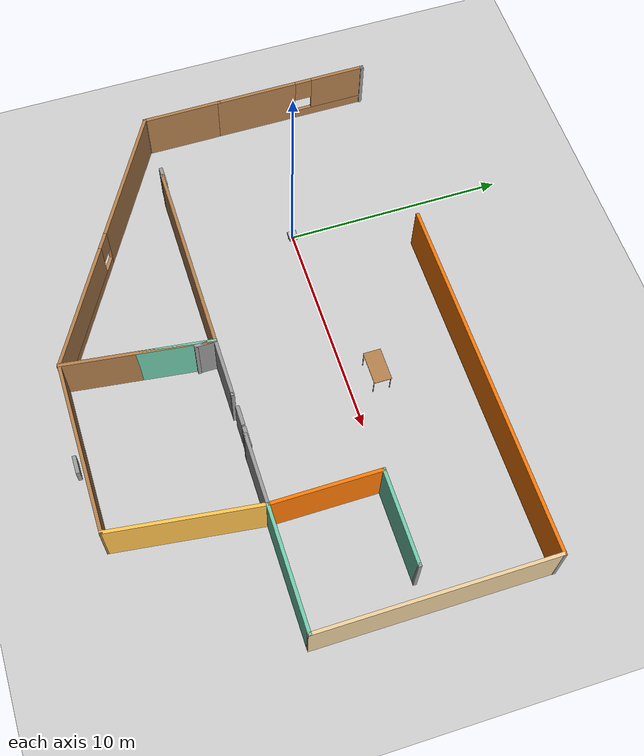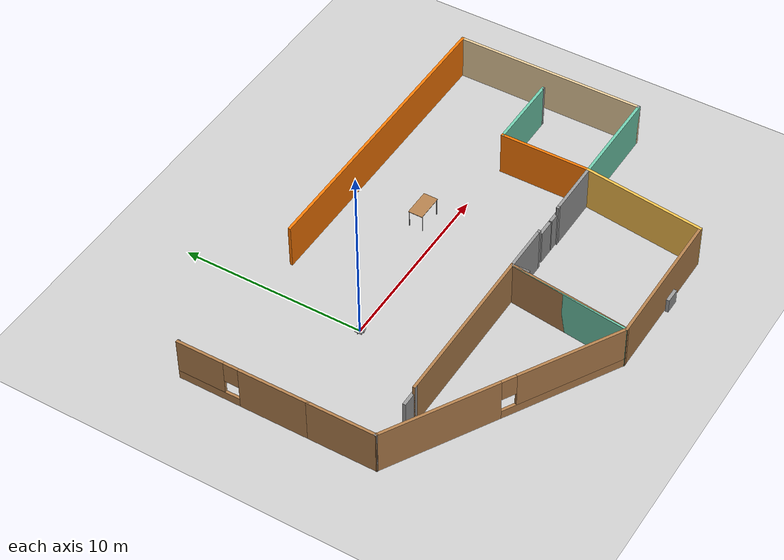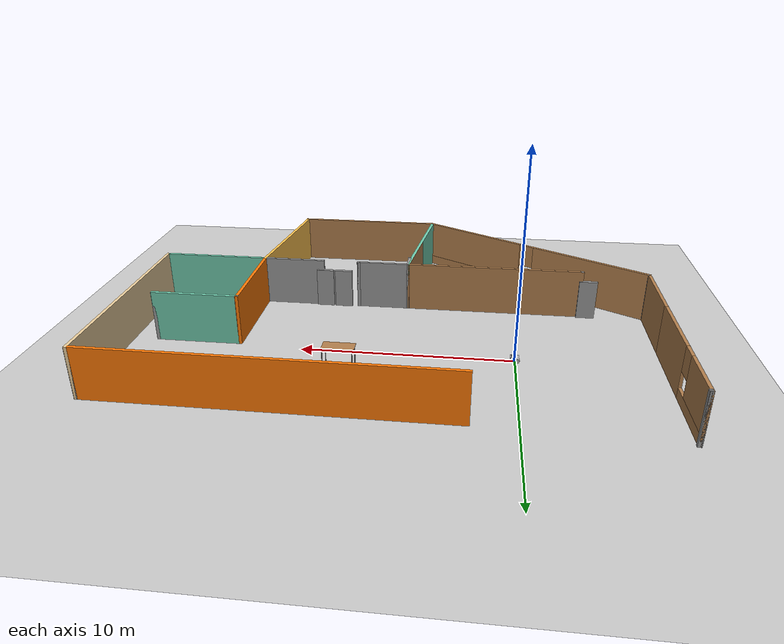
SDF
<sdf version="1.7">
 <world name="default">
  <light name="sun" type="directional">
   <pose>0 0 10 0 -0 0</pose>
   <diffuse>0.8 0.8 0.8 1</diffuse>
   <specular>0.2 0.2 0.2 1</specular>
   <attenuation>
    <range>1000</range>
    <constant>0.9</constant>
    <linear>0.01</linear>
    <quadratic>0.001</quadratic>
   </attenuation>
   <direction>-0.5 0.1 -0.9</direction>
   <spot><inner_angle>0</inner_angle><outer_angle>0</outer_angle><falloff>0</falloff></spot>
  </light>
  <model name="ground_plane">
   <static>1</static>
   <link name="link">
    <collision name="collision">
     <geometry><plane><normal>0 0 1</normal><size>100 100</size></plane></geometry>
     <surface>
      <contact><collide_bitmask>65535</collide_bitmask></contact>
      <friction><ode><mu>100</mu><mu2>50</mu2></ode></friction>
     </surface>
    </collision>
    <visual name="visual">
     <cast_shadows>0</cast_shadows>
     <geometry><plane><normal>0 0 1</normal><size>100 100</size></plane></geometry>
     <material>
      <script><uri>file://media/materials/scripts/gazebo.material</uri><name>Gazebo/Grey</name></script>
     </material>
    </visual>
   </link>
  </model>
  <gravity>0 0 -9.8</gravity>
  <magnetic_field>6e-06 2.3e-05 -4.2e-05</magnetic_field>
  <atmosphere type="adiabatic"/>
  <physics type="ode">
   <max_step_size>0.001</max_step_size>
   <real_time_factor>1</real_time_factor>
   <real_time_update_rate>1000</real_time_update_rate>
  </physics>
  <scene><ambient>0.4 0.4 0.4 1</ambient><background>0.7 0.7 0.7 1</background><shadows>1</shadows></scene>
  <spherical_coordinates>
   <surface_model>EARTH_WGS84</surface_model>
   <latitude_deg>0</latitude_deg>
   <longitude_deg>0</longitude_deg>
   <elevation>0</elevation>
   <heading_deg>0</heading_deg>
  </spherical_coordinates>
  <model name="differential_drive_robot">
   <link name="base_link">
    <inertial>
     <pose>1e-06 0 0.1 0 -0 0</pose>
     <mass>1.00001</mass>
     <inertia>
      <ixx>0.100001</ixx>
      <ixy>0</ixy>
      <ixz>-4.99995e-08</ixz>
      <iyy>0.100001</iyy>
      <iyz>0</iyz>
      <izz>0.100001</izz>
     </inertia>
    </inertial>
    <collision name="base_link_collision"><geometry><box><size>0.4 0.4 0.2</size></box></geometry></collision>
    <collision name="base_link_fixed_joint_lump__laser_collision_1">
     <pose>0.1 0 0.15 0 -0 0</pose>
     <geometry><box><size>0.1 0.1 0.1</size></box></geometry>
    </collision>
    <visual name="base_link_visual"><geometry><box><size>0.4 0.4 0.2</size></box></geometry></visual>
    <visual name="base_link_fixed_joint_lump__laser_visual_1">
     <pose>0.1 0 0.15 0 -0 0</pose>
     <geometry><box><size>0.1 0.1 0.1</size></box></geometry>
    </visual>
    <sensor name="laser_sensor" type="ray">
     <visualize>1</visualize>
     <update_rate>40</update_rate>
     <ray>
      <scan>
       <horizontal>
        <samples>640</samples>
        <resolution>1</resolution>
        <min_angle>-1.5708</min_angle>
        <max_angle>1.5708</max_angle>
       </horizontal>
       <vertical><samples>1</samples><min_angle>0</min_angle><max_angle>0</max_angle></vertical>
      </scan>
      <range><min>0.1</min><max>10</max><resolution>0.01</resolution></range>
     </ray>
     <plugin name="gazebo_ros_laser" filename="libgazebo_ros_laser.so">
      <topicName>scan</topicName>
      <frameName>laser</frameName>
      <robotNamespace>/</robotNamespace>
     </plugin>
     <pose>0.1 0 0.15 0 -0 0</pose>
    </sensor>
   </link>
   <joint name="back_wheel_joint" type="revolute">
    <pose relative_to="base_link">-0.2 0 -0.1 0 -0 0</pose>
    <parent>base_link</parent>
    <child>back_wheel</child>
    <axis>
     <xyz>0 1 0</xyz>
     <limit><lower>-1e+16</lower><upper>1e+16</upper></limit>
     <dynamics><spring_reference>0</spring_reference><spring_stiffness>0</spring_stiffness></dynamics>
    </axis>
   </joint>
   <link name="back_wheel">
    <pose relative_to="back_wheel_joint">0 0 0 0 -0 0</pose>
    <inertial>
     <mass>0.5</mass>
     <inertia><ixx>0.1</ixx><ixy>0</ixy><ixz>0</ixz><iyy>0.1</iyy><iyz>0</iyz><izz>0.1</izz></inertia>
    </inertial>
    <collision name="back_wheel_collision">
     <pose>0 0 0 1.5708 -0 0</pose>
     <geometry><cylinder><length>0.02</length><radius>0.05</radius></cylinder></geometry>
    </collision>
    <visual name="back_wheel_visual">
     <pose>0 0 0 1.5708 -0 0</pose>
     <geometry><cylinder><length>0.02</length><radius>0.05</radius></cylinder></geometry>
    </visual>
   </link>
   <joint name="front_wheel_joint" type="revolute">
    <pose relative_to="base_link">0.2 0 -0.1 0 -0 0</pose>
    <parent>base_link</parent>
    <child>front_wheel</child>
    <axis>
     <xyz>0 1 0</xyz>
     <limit><lower>-1e+16</lower><upper>1e+16</upper></limit>
     <dynamics><spring_reference>0</spring_reference><spring_stiffness>0</spring_stiffness></dynamics>
    </axis>
   </joint>
   <link name="front_wheel">
    <pose relative_to="front_wheel_joint">0 0 0 0 -0 0</pose>
    <inertial>
     <mass>0.5</mass>
     <inertia><ixx>0.1</ixx><ixy>0</ixy><ixz>0</ixz><iyy>0.1</iyy><iyz>0</iyz><izz>0.1</izz></inertia>
    </inertial>
    <collision name="front_wheel_collision">
     <pose>0 0 0 1.5708 -0 0</pose>
     <geometry><cylinder><length>0.02</length><radius>0.05</radius></cylinder></geometry>
    </collision>
    <visual name="front_wheel_visual">
     <pose>0 0 0 1.5708 -0 0</pose>
     <geometry><cylinder><length>0.02</length><radius>0.05</radius></cylinder></geometry>
    </visual>
   </link>
   <joint name="left_wheel_joint" type="revolute">
    <pose relative_to="base_link">0 0.2 -0.1 0 -0 0</pose>
    <parent>base_link</parent>
    <child>left_wheel</child>
    <axis>
     <xyz>0 1 0</xyz>
     <limit><lower>-1e+16</lower><upper>1e+16</upper></limit>
     <dynamics><spring_reference>0</spring_reference><spring_stiffness>0</spring_stiffness></dynamics>
    </axis>
   </joint>
   <link name="left_wheel">
    <pose relative_to="left_wheel_joint">0 0 0 0 -0 0</pose>
    <inertial>
     <mass>0.5</mass>
     <inertia><ixx>0.1</ixx><ixy>0</ixy><ixz>0</ixz><iyy>0.1</iyy><iyz>0</iyz><izz>0.1</izz></inertia>
    </inertial>
    <collision name="left_wheel_collision">
     <pose>0 0 0 1.5708 -0 0</pose>
     <geometry><cylinder><length>0.02</length><radius>0.05</radius></cylinder></geometry>
    </collision>
    <visual name="left_wheel_visual">
     <pose>0 0 0 1.5708 -0 0</pose>
     <geometry><cylinder><length>0.02</length><radius>0.05</radius></cylinder></geometry>
    </visual>
   </link>
   <joint name="right_wheel_joint" type="revolute">
    <pose relative_to="base_link">0 -0.2 -0.1 0 -0 0</pose>
    <parent>base_link</parent>
    <child>right_wheel</child>
    <axis>
     <xyz>0 1 0</xyz>
     <limit><lower>-1e+16</lower><upper>1e+16</upper></limit>
     <dynamics><spring_reference>0</spring_reference><spring_stiffness>0</spring_stiffness></dynamics>
    </axis>
   </joint>
   <link name="right_wheel">
    <pose relative_to="right_wheel_joint">0 0 0 0 -0 0</pose>
    <inertial>
     <mass>0.5</mass>
     <inertia><ixx>0.1</ixx><ixy>0</ixy><ixz>0</ixz><iyy>0.1</iyy><iyz>0</iyz><izz>0.1</izz></inertia>
    </inertial>
    <collision name="right_wheel_collision">
     <pose>0 0 0 1.5708 -0 0</pose>
     <geometry><cylinder><length>0.02</length><radius>0.05</radius></cylinder></geometry>
    </collision>
    <visual name="right_wheel_visual">
     <pose>0 0 0 1.5708 -0 0</pose>
     <geometry><cylinder><length>0.02</length><radius>0.05</radius></cylinder></geometry>
    </visual>
   </link>
   <static>0</static>
   <plugin name="robot_state_publisher" filename="libgazebo_ros_robot_state.so">
    <robotNamespace>/</robotNamespace>
   </plugin>
   <plugin name="joint_state_publisher" filename="libgazebo_ros_joint_state_publisher.so">
    <joint_state_topic>joint_states</joint_state_topic>
    <robotNamespace>/</robotNamespace>
   </plugin>
   <plugin name="differential_drive_controller" filename="libgazebo_ros_diff_drive.so">
    <robotNamespace>/</robotNamespace>
    <leftJoint>left_wheel_joint</leftJoint>
    <rightJoint>right_wheel_joint</rightJoint>
    <wheelSeparation>0.4</wheelSeparation>
    <wheelRadius>0.05</wheelRadius>
    <publishWheelTF>1</publishWheelTF>
    <publishWheelJointState>1</publishWheelJointState>
    <publishTf>1</publishTf>
    <updateRate>50</updateRate>
    <commandTopic>cmd_vel</commandTopic>
    <odometryTopic>odom</odometryTopic>
    <odometryFrame>odom</odometryFrame>
    <robotBaseFrame>base_link</robotBaseFrame>
    <odometrySource>1</odometrySource>
    <wheelDiameter>0.1</wheelDiameter>
    <wheelAcceleration>0</wheelAcceleration>
    <wheelTorque>5</wheelTorque>
   </plugin>
   <pose>0.000556 0.00024 0.15 -1e-06 0 -0.001583</pose>
  </model>
  <model name="save">
   <pose>5.82624 -3.06558 0 0 -0 0</pose>
   <link name="Door_0">
    <collision name="Door_0_Collision">
     <geometry><box><size>0.9 0.17 2</size></box></geometry>
     <pose>0 0 1 0 -0 0</pose>
    </collision>
    <visual name="Door_0_Visual">
     <pose>0 0 1 0 -0 0</pose>
     <geometry><box><size>0.9 0.17 2</size></box></geometry>
     <material>
      <script><uri>file://media/materials/scripts/gazebo.material</uri><name>Gazebo/Grey</name></script>
     </material>
    </visual>
    <pose>2.98824 -1.98577 0 0 -0 0</pose>
   </link>
   <link name="Door_1">
    <collision name="Door_1_Collision">
     <geometry><box><size>0.9 0.17 2</size></box></geometry>
     <pose>0 0 1 0 -0 0</pose>
    </collision>
    <visual name="Door_1_Visual">
     <pose>0 0 1 0 -0 0</pose>
     <geometry><box><size>0.9 0.17 2</size></box></geometry>
     <material>
      <script><uri>file://media/materials/scripts/gazebo.material</uri><name>Gazebo/Grey</name></script>
     </material>
    </visual>
    <pose>3.95676 -1.98577 0 0 -0 0</pose>
   </link>
   <link name="Door_2">
    <collision name="Door_2_Collision">
     <geometry><box><size>0.91 0.17 2.003</size></box></geometry>
     <pose>0 0 1.0015 0 -0 0</pose>
    </collision>
    <visual name="Door_2_Visual">
     <pose>0 0 1.0015 0 -0 0</pose>
     <geometry><box><size>0.91 0.17 2.003</size></box></geometry>
     <material>
      <script><uri>file://media/materials/scripts/gazebo.material</uri><name>Gazebo/Grey</name></script>
     </material>
    </visual>
    <pose>-9.60243 -1.98577 0 0 -0 0</pose>
   </link>
   <link name="Wall_0">
    <collision name="Wall_0_Collision">
     <geometry><box><size>3.75 0.15 2.5</size></box></geometry>
     <pose>0 0 1.25 0 -0 0</pose>
    </collision>
    <visual name="Wall_0_Visual">
     <pose>0 0 1.25 0 -0 0</pose>
     <geometry><box><size>3.75 0.15 2.5</size></box></geometry>
     <material>
      <script><uri>file://media/materials/scripts/gazebo.material</uri><name>Gazebo/Wood</name></script>
      <ambient>1 1 1 1</ambient>
     </material>
     <meta><layer>0</layer></meta>
    </visual>
    <pose>-12.5362 -0.264419 0 0 -0 -1.5708</pose>
   </link>
   <link name="Wall_1">
    <collision name="Wall_1_Collision">
     <geometry><box><size>0.16 0.15 2.5</size></box></geometry>
     <pose>0 0 1.25 0 -0 0</pose>
    </collision>
    <visual name="Wall_1_Visual">
     <pose>0 0 1.25 0 -0 0</pose>
     <geometry><box><size>0.16 0.15 2.5</size></box></geometry>
     <material>
      <script><uri>file://media/materials/scripts/gazebo.material</uri><name>Gazebo/Grey</name></script>
      <ambient>1 1 1 1</ambient>
     </material>
     <meta><layer>0</layer></meta>
    </visual>
    <pose>-12.5312 -2.06442 0 0 -0 0</pose>
   </link>
   <link name="Wall_10">
    <collision name="Wall_10_Collision">
     <geometry><box><size>0.16 0.15 2.5</size></box></geometry>
     <pose>0 0 1.25 0 -0 0</pose>
    </collision>
    <visual name="Wall_10_Visual">
     <pose>0 0 1.25 0 -0 0</pose>
     <geometry><box><size>0.16 0.15 2.5</size></box></geometry>
     <material>
      <script><uri>file://media/materials/scripts/gazebo.material</uri><name>Gazebo/Grey</name></script>
      <ambient>1 1 1 1</ambient>
     </material>
     <meta><layer>0</layer></meta>
    </visual>
    <pose>-12.5112 8.63558 0 0 -0 0</pose>
   </link>
   <link name="Wall_11">
    <collision name="Wall_11_Collision">
     <geometry><box><size>0.16 0.15 2.5</size></box></geometry>
     <pose>0 0 1.25 0 -0 0</pose>
    </collision>
    <visual name="Wall_11_Visual">
     <pose>0 0 1.25 0 -0 0</pose>
     <geometry><box><size>0.16 0.15 2.5</size></box></geometry>
     <material>
      <script><uri>file://media/materials/scripts/gazebo.material</uri><name>Gazebo/Grey</name></script>
      <ambient>1 1 1 1</ambient>
     </material>
     <meta><layer>0</layer></meta>
    </visual>
    <pose>-12.5012 8.63558 0 0 -0 0</pose>
   </link>
   <link name="Wall_13">
    <collision name="Wall_13_Collision">
     <geometry><box><size>7.75 0.15 2.5</size></box></geometry>
     <pose>0 0 1.25 0 -0 0</pose>
    </collision>
    <visual name="Wall_13_Visual">
     <pose>0 0 1.25 0 -0 0</pose>
     <geometry><box><size>7.75 0.15 2.5</size></box></geometry>
     <material>
      <script><uri>file://media/materials/scripts/gazebo.material</uri><name>Gazebo/Wood</name></script>
      <ambient>1 1 1 1</ambient>
     </material>
     <meta><layer>0</layer></meta>
    </visual>
    <pose>2.54915 -8.60807 0 0 -0 0</pose>
   </link>
   <link name="Wall_14">
    <collision name="Wall_14_Collision">
     <geometry><box><size>6.74666 0.15 2.5</size></box></geometry>
     <pose>0 0 1.25 0 -0 0</pose>
    </collision>
    <visual name="Wall_14_Visual">
     <pose>0 0 1.25 0 -0 0</pose>
     <geometry><box><size>6.74666 0.15 2.5</size></box></geometry>
     <material>
      <script><uri>file://media/materials/scripts/gazebo.material</uri><name>Gazebo/Grey</name></script>
      <ambient>1 0.764706 0.305882 1</ambient>
     </material>
     <meta><layer>0</layer></meta>
    </visual>
    <pose>6.76645 -5.33624 0 0 -0 1.44394</pose>
   </link>
   <link name="Wall_16">
    <collision name="Wall_16_Collision">
     <geometry><box><size>1 0.15 2.5</size></box></geometry>
     <pose>0 0 1.25 0 -0 0</pose>
    </collision>
    <visual name="Wall_16_Visual">
     <pose>0 0 1.25 0 -0 0</pose>
     <geometry><box><size>1 0.15 2.5</size></box></geometry>
     <material>
      <script><uri>file://media/materials/scripts/gazebo.material</uri><name>Gazebo/Grey</name></script>
      <ambient>1 1 1 1</ambient>
     </material>
     <meta><layer>0</layer></meta>
    </visual>
    <pose>-0.416243 -2.48942 0 0 -0 -1.5708</pose>
   </link>
   <link name="Wall_17">
    <collision name="Wall_17_Collision">
     <geometry><box><size>0.16 0.15 2.5</size></box></geometry>
     <pose>0 0 1.25 0 -0 0</pose>
    </collision>
    <visual name="Wall_17_Visual">
     <pose>0 0 1.25 0 -0 0</pose>
     <geometry><box><size>0.16 0.15 2.5</size></box></geometry>
     <material>
      <script><uri>file://media/materials/scripts/gazebo.material</uri><name>Gazebo/Grey</name></script>
      <ambient>1 1 1 1</ambient>
     </material>
     <meta><layer>0</layer></meta>
    </visual>
    <pose>-0.411243 -2.91442 0 0 -0 0</pose>
   </link>
   <link name="Wall_18">
    <collision name="Wall_18_Collision">
     <geometry><box><size>0.16 0.15 2.5</size></box></geometry>
     <pose>0 0 1.25 0 -0 0</pose>
    </collision>
    <visual name="Wall_18_Visual">
     <pose>0 0 1.25 0 -0 0</pose>
     <geometry><box><size>0.16 0.15 2.5</size></box></geometry>
     <material>
      <script><uri>file://media/materials/scripts/gazebo.material</uri><name>Gazebo/Grey</name></script>
      <ambient>1 1 1 1</ambient>
     </material>
     <meta><layer>0</layer></meta>
    </visual>
    <pose>-0.401243 -2.91442 0 0 -0 0</pose>
   </link>
   <link name="Wall_2">
    <pose>-6.88855 -5.33624 0 0 -0 -0.525844</pose>
    <visual name="Wall_2_Visual_0">
     <pose>-3.37088 0 1.25 0 -0 0</pose>
     <geometry><box><size>6.44488 0.15 2.5</size></box></geometry>
     <material>
      <script><uri>file://media/materials/scripts/gazebo.material</uri><name>Gazebo/Wood</name></script>
      <ambient>1 1 1 1</ambient>
     </material>
     <meta><layer>0</layer></meta>
    </visual>
    <collision name="Wall_2_Collision_0">
     <geometry><box><size>6.44488 0.15 2.5</size></box></geometry>
     <pose>-3.37088 0 1.25 0 -0 0</pose>
    </collision>
    <visual name="Wall_2_Visual_1">
     <pose>3.22244 0 0.25 0 -0 0</pose>
     <geometry><box><size>6.74175 0.15 0.5</size></box></geometry>
     <material>
      <script><uri>file://media/materials/scripts/gazebo.material</uri><name>Gazebo/Wood</name></script>
      <ambient>1 1 1 1</ambient>
     </material>
     <meta><layer>0</layer></meta>
    </visual>
    <collision name="Wall_2_Collision_1">
     <geometry><box><size>6.74175 0.15 0.5</size></box></geometry>
     <pose>3.22244 0 0.25 0 -0 0</pose>
    </collision>
    <visual name="Wall_2_Visual_2">
     <pose>3.62244 0 1.5 0 -0 0</pose>
     <geometry><box><size>5.94175 0.15 2</size></box></geometry>
     <material>
      <script><uri>file://media/materials/scripts/gazebo.material</uri><name>Gazebo/Wood</name></script>
      <ambient>1 1 1 1</ambient>
     </material>
     <meta><layer>0</layer></meta>
    </visual>
    <collision name="Wall_2_Collision_2">
     <geometry><box><size>5.94175 0.15 2</size></box></geometry>
     <pose>3.62244 0 1.5 0 -0 0</pose>
    </collision>
    <visual name="Wall_2_Visual_3">
     <pose>0.251565 0 1.9 0 -0 0</pose>
     <geometry><box><size>0.8 0.15 1.2</size></box></geometry>
     <material>
      <script><uri>file://media/materials/scripts/gazebo.material</uri><name>Gazebo/Wood</name></script>
      <ambient>1 1 1 1</ambient>
     </material>
     <meta><layer>0</layer></meta>
    </visual>
    <collision name="Wall_2_Collision_3">
     <geometry><box><size>0.8 0.15 1.2</size></box></geometry>
     <pose>0.251565 0 1.9 0 -0 0</pose>
    </collision>
   </link>
   <link name="Wall_20">
    <collision name="Wall_20_Collision">
     <geometry><box><size>5.5 0.15 2.5</size></box></geometry>
     <pose>0 0 1.25 0 -0 0</pose>
    </collision>
    <visual name="Wall_20_Visual">
     <pose>0 0 1.25 0 -0 0</pose>
     <geometry><box><size>5.5 0.15 2.5</size></box></geometry>
     <material>
      <script><uri>file://media/materials/scripts/gazebo.material</uri><name>Gazebo/Grey</name></script>
      <ambient>0.435294 0.796078 0.67451 1</ambient>
     </material>
     <meta><layer>0</layer></meta>
    </visual>
    <pose>9.85876 -2.06442 0 0 -0 0</pose>
   </link>
   <link name="Wall_21">
    <collision name="Wall_21_Collision">
     <geometry><box><size>0.16 0.15 2.5</size></box></geometry>
     <pose>0 0 1.25 0 -0 0</pose>
    </collision>
    <visual name="Wall_21_Visual">
     <pose>0 0 1.25 0 -0 0</pose>
     <geometry><box><size>0.16 0.15 2.5</size></box></geometry>
     <material>
      <script><uri>file://media/materials/scripts/gazebo.material</uri><name>Gazebo/Grey</name></script>
      <ambient>1 1 1 1</ambient>
     </material>
     <meta><layer>0</layer></meta>
    </visual>
    <pose>12.5388 -2.06442 0 0 -0 0</pose>
   </link>
   <link name="Wall_22">
    <collision name="Wall_22_Collision">
     <geometry><box><size>10.5 0.15 2.5</size></box></geometry>
     <pose>0 0 1.25 0 -0 0</pose>
    </collision>
    <visual name="Wall_22_Visual">
     <pose>0 0 1.25 0 -0 0</pose>
     <geometry><box><size>10.5 0.15 2.5</size></box></geometry>
     <material>
      <script><uri>file://media/materials/scripts/gazebo.material</uri><name>Gazebo/Grey</name></script>
      <ambient>0.921569 0.807843 0.615686 1</ambient>
     </material>
     <meta><layer>0</layer></meta>
    </visual>
    <pose>12.5438 3.11058 0 0 -0 1.5708</pose>
   </link>
   <link name="Wall_23">
    <collision name="Wall_23_Collision">
     <geometry><box><size>0.16 0.15 2.5</size></box></geometry>
     <pose>0 0 1.25 0 -0 0</pose>
    </collision>
    <visual name="Wall_23_Visual">
     <pose>0 0 1.25 0 -0 0</pose>
     <geometry><box><size>0.16 0.15 2.5</size></box></geometry>
     <material>
      <script><uri>file://media/materials/scripts/gazebo.material</uri><name>Gazebo/Grey</name></script>
      <ambient>1 1 1 1</ambient>
     </material>
     <meta><layer>0</layer></meta>
    </visual>
    <pose>12.5488 8.28558 0 0 -0 0</pose>
   </link>
   <link name="Wall_24">
    <collision name="Wall_24_Collision">
     <geometry><box><size>16.5 0.15 2.5</size></box></geometry>
     <pose>0 0 1.25 0 -0 0</pose>
    </collision>
    <visual name="Wall_24_Visual">
     <pose>0 0 1.25 0 -0 0</pose>
     <geometry><box><size>16.5 0.15 2.5</size></box></geometry>
     <material>
      <script><uri>file://media/materials/scripts/gazebo.material</uri><name>Gazebo/Grey</name></script>
      <ambient>0.996078 0.47451 0.0196078 1</ambient>
     </material>
     <meta><layer>0</layer></meta>
    </visual>
    <pose>4.37876 8.28558 0 0 -0 3.14159</pose>
   </link>
   <link name="Wall_26">
    <collision name="Wall_26_Collision">
     <geometry><box><size>5 0.15 2.5</size></box></geometry>
     <pose>0 0 1.25 0 -0 0</pose>
    </collision>
    <visual name="Wall_26_Visual">
     <pose>0 0 1.25 0 -0 0</pose>
     <geometry><box><size>5 0.15 2.5</size></box></geometry>
     <material>
      <script><uri>file://media/materials/scripts/gazebo.material</uri><name>Gazebo/Grey</name></script>
      <ambient>0.996078 0.47451 0.0196078 1</ambient>
     </material>
     <meta><layer>0</layer></meta>
    </visual>
    <pose>7.18376 0.360581 0 0 -0 1.5708</pose>
   </link>
   <link name="Wall_27">
    <collision name="Wall_27_Collision">
     <geometry><box><size>0.16 0.15 2.5</size></box></geometry>
     <pose>0 0 1.25 0 -0 0</pose>
    </collision>
    <visual name="Wall_27_Visual">
     <pose>0 0 1.25 0 -0 0</pose>
     <geometry><box><size>0.16 0.15 2.5</size></box></geometry>
     <material>
      <script><uri>file://media/materials/scripts/gazebo.material</uri><name>Gazebo/Grey</name></script>
      <ambient>1 1 1 1</ambient>
     </material>
     <meta><layer>0</layer></meta>
    </visual>
    <pose>7.18876 2.78558 0 0 -0 0</pose>
   </link>
   <link name="Wall_29">
    <collision name="Wall_29_Collision">
     <geometry><box><size>4.25 0.15 2.5</size></box></geometry>
     <pose>0 0 1.25 0 -0 0</pose>
    </collision>
    <visual name="Wall_29_Visual">
     <pose>0 0 1.25 0 -0 0</pose>
     <geometry><box><size>4.25 0.15 2.5</size></box></geometry>
     <material>
      <script><uri>file://media/materials/scripts/gazebo.material</uri><name>Gazebo/Grey</name></script>
      <ambient>0.435294 0.796078 0.67451 1</ambient>
     </material>
     <meta><layer>0</layer></meta>
    </visual>
    <pose>9.23376 2.78558 0 0 -0 0</pose>
   </link>
   <link name="Wall_3">
    <collision name="Wall_3_Collision">
     <geometry><box><size>6.74666 0.15 2.5</size></box></geometry>
     <pose>0 0 1.25 0 -0 0</pose>
    </collision>
    <visual name="Wall_3_Visual">
     <pose>0 0 1.25 0 -0 0</pose>
     <geometry><box><size>6.74666 0.15 2.5</size></box></geometry>
     <material>
      <script><uri>file://media/materials/scripts/gazebo.material</uri><name>Gazebo/Wood</name></script>
      <ambient>0.921569 0.807843 0.615686 1</ambient>
     </material>
     <meta><layer>0</layer></meta>
    </visual>
    <pose>-0.833546 -5.33624 0 0 -0 1.44394</pose>
   </link>
   <link name="Wall_30">
    <collision name="Wall_30_Collision">
     <geometry><box><size>0.16 0.15 2.5</size></box></geometry>
     <pose>0 0 1.25 0 -0 0</pose>
    </collision>
    <visual name="Wall_30_Visual">
     <pose>0 0 1.25 0 -0 0</pose>
     <geometry><box><size>0.16 0.15 2.5</size></box></geometry>
     <material>
      <script><uri>file://media/materials/scripts/gazebo.material</uri><name>Gazebo/Grey</name></script>
      <ambient>1 1 1 1</ambient>
     </material>
     <meta><layer>0</layer></meta>
    </visual>
    <pose>11.2888 2.78558 0 0 -0 0</pose>
   </link>
   <link name="Wall_32">
    <collision name="Wall_32_Collision">
     <geometry><box><size>9 0.15 2.5</size></box></geometry>
     <pose>0 0 1.25 0 -0 0</pose>
    </collision>
    <visual name="Wall_32_Visual">
     <pose>0 0 1.25 0 -0 0</pose>
     <geometry><box><size>9 0.15 2.5</size></box></geometry>
     <material>
      <script><uri>file://media/materials/scripts/gazebo.material</uri><name>Gazebo/Wood</name></script>
      <ambient>1 1 1 1</ambient>
     </material>
     <meta><layer>0</layer></meta>
    </visual>
    <pose>-4.84124 -2.06442 0 0 -0 3.14159</pose>
   </link>
   <link name="Wall_33">
    <collision name="Wall_33_Collision">
     <geometry><box><size>0.16 0.15 2.5</size></box></geometry>
     <pose>0 0 1.25 0 -0 0</pose>
    </collision>
    <visual name="Wall_33_Visual">
     <pose>0 0 1.25 0 -0 0</pose>
     <geometry><box><size>0.16 0.15 2.5</size></box></geometry>
     <material>
      <script><uri>file://media/materials/scripts/gazebo.material</uri><name>Gazebo/Grey</name></script>
      <ambient>1 1 1 1</ambient>
     </material>
     <meta><layer>0</layer></meta>
    </visual>
    <pose>-9.26124 -2.06442 0 0 -0 0</pose>
   </link>
   <link name="Wall_35">
    <collision name="Wall_35_Collision">
     <geometry><box><size>2.75 0.15 2.5</size></box></geometry>
     <pose>0 0 1.25 0 -0 0</pose>
    </collision>
    <visual name="Wall_35_Visual">
     <pose>0 0 1.25 0 -0 0</pose>
     <geometry><box><size>2.75 0.15 2.5</size></box></geometry>
     <material>
      <script><uri>file://media/materials/scripts/gazebo.material</uri><name>Gazebo/Grey</name></script>
      <ambient>1 1 1 1</ambient>
     </material>
     <meta><layer>0</layer></meta>
    </visual>
    <pose>0.883757 -2.06442 0 0 -0 0</pose>
   </link>
   <link name="Wall_36">
    <collision name="Wall_36_Collision">
     <geometry><box><size>0.16 0.15 2.5</size></box></geometry>
     <pose>0 0 1.25 0 -0 0</pose>
    </collision>
    <visual name="Wall_36_Visual">
     <pose>0 0 1.25 0 -0 0</pose>
     <geometry><box><size>0.16 0.15 2.5</size></box></geometry>
     <material>
      <script><uri>file://media/materials/scripts/gazebo.material</uri><name>Gazebo/Grey</name></script>
      <ambient>1 1 1 1</ambient>
     </material>
     <meta><layer>0</layer></meta>
    </visual>
    <pose>2.18876 -2.06442 0 0 -0 0</pose>
   </link>
   <link name="Wall_38">
    <collision name="Wall_38_Collision">
     <geometry><box><size>3.25 0.15 2.5</size></box></geometry>
     <pose>0 0 1.25 0 -0 0</pose>
    </collision>
    <visual name="Wall_38_Visual">
     <pose>0 0 1.25 0 -0 0</pose>
     <geometry><box><size>3.25 0.15 2.5</size></box></geometry>
     <material>
      <script><uri>file://media/materials/scripts/gazebo.material</uri><name>Gazebo/Grey</name></script>
      <ambient>1 1 1 1</ambient>
     </material>
     <meta><layer>0</layer></meta>
    </visual>
    <pose>5.63376 -2.06442 0 0 -0 3.14159</pose>
   </link>
   <link name="Wall_39">
    <collision name="Wall_39_Collision">
     <geometry><box><size>0.16 0.15 2.5</size></box></geometry>
     <pose>0 0 1.25 0 -0 0</pose>
    </collision>
    <visual name="Wall_39_Visual">
     <pose>0 0 1.25 0 -0 0</pose>
     <geometry><box><size>0.16 0.15 2.5</size></box></geometry>
     <material>
      <script><uri>file://media/materials/scripts/gazebo.material</uri><name>Gazebo/Grey</name></script>
      <ambient>1 1 1 1</ambient>
     </material>
     <meta><layer>0</layer></meta>
    </visual>
    <pose>4.08876 -2.06442 0 0 -0 0</pose>
   </link>
   <link name="Wall_4">
    <collision name="Wall_4_Collision">
     <geometry><box><size>6.74666 0.15 2.5</size></box></geometry>
     <pose>0 0 1.25 0 -0 0</pose>
    </collision>
    <visual name="Wall_4_Visual">
     <pose>0 0 1.25 0 -0 0</pose>
     <geometry><box><size>6.74666 0.15 2.5</size></box></geometry>
     <material>
      <script><uri>file://media/materials/scripts/gazebo.material</uri><name>Gazebo/Grey</name></script>
      <ambient>0.435294 0.796078 0.67451 1</ambient>
     </material>
     <meta><layer>0</layer></meta>
    </visual>
    <pose>-0.833546 -5.33624 0 0 -0 -1.69766</pose>
   </link>
   <link name="Wall_5">
    <collision name="Wall_5_Collision">
     <geometry><box><size>6.74666 0.15 2.5</size></box></geometry>
     <pose>0 0 1.25 0 -0 0</pose>
    </collision>
    <visual name="Wall_5_Visual">
     <pose>0 0 1.25 0 -0 0</pose>
     <geometry><box><size>6.74666 0.15 2.5</size></box></geometry>
     <material>
      <script><uri>file://media/materials/scripts/gazebo.material</uri><name>Gazebo/Grey</name></script>
      <ambient>1 1 1 1</ambient>
     </material>
     <meta><layer>0</layer></meta>
    </visual>
    <pose>-0.833546 -5.33624 0 0 -0 1.44394</pose>
   </link>
   <link name="Wall_7">
    <pose>-12.5362 5.08558 0 0 -0 1.5708</pose>
    <visual name="Wall_7_Visual_0">
     <pose>-1.70701 0 1.25 0 -0 0</pose>
     <geometry><box><size>3.83598 0.15 2.5</size></box></geometry>
     <material>
      <script><uri>file://media/materials/scripts/gazebo.material</uri><name>Gazebo/Wood</name></script>
      <ambient>1 1 1 1</ambient>
     </material>
     <meta><layer>0</layer></meta>
    </visual>
    <collision name="Wall_7_Collision_0">
     <geometry><box><size>3.83598 0.15 2.5</size></box></geometry>
     <pose>-1.70701 0 1.25 0 -0 0</pose>
    </collision>
    <visual name="Wall_7_Visual_1">
     <pose>1.91799 0 0.25 0 -0 0</pose>
     <geometry><box><size>3.41402 0.15 0.5</size></box></geometry>
     <material>
      <script><uri>file://media/materials/scripts/gazebo.material</uri><name>Gazebo/Wood</name></script>
      <ambient>1 1 1 1</ambient>
     </material>
     <meta><layer>0</layer></meta>
    </visual>
    <collision name="Wall_7_Collision_1">
     <geometry><box><size>3.41402 0.15 0.5</size></box></geometry>
     <pose>1.91799 0 0.25 0 -0 0</pose>
    </collision>
    <visual name="Wall_7_Visual_2">
     <pose>2.31799 0 1.5 0 -0 0</pose>
     <geometry><box><size>2.61402 0.15 2</size></box></geometry>
     <material>
      <script><uri>file://media/materials/scripts/gazebo.material</uri><name>Gazebo/Wood</name></script>
      <ambient>1 1 1 1</ambient>
     </material>
     <meta><layer>0</layer></meta>
    </visual>
    <collision name="Wall_7_Collision_2">
     <geometry><box><size>2.61402 0.15 2</size></box></geometry>
     <pose>2.31799 0 1.5 0 -0 0</pose>
    </collision>
    <visual name="Wall_7_Visual_3">
     <pose>0.610984 0 1.9 0 -0 0</pose>
     <geometry><box><size>0.8 0.15 1.2</size></box></geometry>
     <material>
      <script><uri>file://media/materials/scripts/gazebo.material</uri><name>Gazebo/Wood</name></script>
      <ambient>1 1 1 1</ambient>
     </material>
     <meta><layer>0</layer></meta>
    </visual>
    <collision name="Wall_7_Collision_3">
     <geometry><box><size>0.8 0.15 1.2</size></box></geometry>
     <pose>0.610984 0 1.9 0 -0 0</pose>
    </collision>
   </link>
   <link name="Wall_8">
    <collision name="Wall_8_Collision">
     <geometry><box><size>0.16 0.15 2.5</size></box></geometry>
     <pose>0 0 1.25 0 -0 0</pose>
    </collision>
    <visual name="Wall_8_Visual">
     <pose>0 0 1.25 0 -0 0</pose>
     <geometry><box><size>0.16 0.15 2.5</size></box></geometry>
     <material>
      <script><uri>file://media/materials/scripts/gazebo.material</uri><name>Gazebo/Grey</name></script>
      <ambient>1 1 1 1</ambient>
     </material>
     <meta><layer>0</layer></meta>
    </visual>
    <pose>-12.5312 8.63558 0 0 -0 0</pose>
   </link>
   <link name="Wall_9">
    <collision name="Wall_9_Collision">
     <geometry><box><size>0.16 0.15 2.5</size></box></geometry>
     <pose>0 0 1.25 0 -0 0</pose>
    </collision>
    <visual name="Wall_9_Visual">
     <pose>0 0 1.25 0 -0 0</pose>
     <geometry><box><size>0.16 0.15 2.5</size></box></geometry>
     <material>
      <script><uri>file://media/materials/scripts/gazebo.material</uri><name>Gazebo/Grey</name></script>
      <ambient>1 1 1 1</ambient>
     </material>
     <meta><layer>0</layer></meta>
    </visual>
    <pose>-12.5212 8.63558 0 0 -0 0</pose>
   </link>
   <link name="Window_3">
    <collision name="Window_3_Collision">
     <geometry><box><size>0.8 0.17 0.8</size></box></geometry>
     <pose>0 0 0.4 0 -0 0</pose>
    </collision>
    <visual name="Window_3_Visual">
     <pose>0 0 0.4 0 -0 0</pose>
     <geometry><box><size>0.8 0.17 0.8</size></box></geometry>
     <material>
      <script><uri>file://media/materials/scripts/gazebo.material</uri><name>Gazebo/Grey</name></script>
     </material>
    </visual>
    <pose>2.77302 -8.98059 0.5 0 -0 0</pose>
   </link>
   <static>1</static>
  </model>
  <model name="table">
   <static>1</static>
   <link name="link">
    <collision name="surface">
     <pose>0 0 1 0 -0 0</pose>
     <geometry><box><size>1.5 0.8 0.03</size></box></geometry>
     <surface><friction><ode><mu>0.6</mu><mu2>0.6</mu2></ode></friction></surface>
    </collision>
    <visual name="visual1">
     <pose>0 0 1 0 -0 0</pose>
     <geometry><box><size>1.5 0.8 0.03</size></box></geometry>
     <material>
      <script><uri>file://media/materials/scripts/gazebo.material</uri><name>Gazebo/Wood</name></script>
     </material>
    </visual>
    <collision name="front_left_leg">
     <pose>0.68 0.38 0.5 0 -0 0</pose>
     <geometry><cylinder><radius>0.02</radius><length>1</length></cylinder></geometry>
    </collision>
    <visual name="front_left_leg">
     <pose>0.68 0.38 0.5 0 -0 0</pose>
     <geometry><cylinder><radius>0.02</radius><length>1</length></cylinder></geometry>
     <material>
      <script><uri>file://media/materials/scripts/gazebo.material</uri><name>Gazebo/Grey</name></script>
     </material>
    </visual>
    <collision name="front_right_leg">
     <pose>0.68 -0.38 0.5 0 -0 0</pose>
     <geometry><cylinder><radius>0.02</radius><length>1</length></cylinder></geometry>
    </collision>
    <visual name="front_right_leg">
     <pose>0.68 -0.38 0.5 0 -0 0</pose>
     <geometry><cylinder><radius>0.02</radius><length>1</length></cylinder></geometry>
     <material>
      <script><uri>file://media/materials/scripts/gazebo.material</uri><name>Gazebo/Grey</name></script>
     </material>
    </visual>
    <collision name="back_right_leg">
     <pose>-0.68 -0.38 0.5 0 -0 0</pose>
     <geometry><cylinder><radius>0.02</radius><length>1</length></cylinder></geometry>
    </collision>
    <visual name="back_right_leg">
     <pose>-0.68 -0.38 0.5 0 -0 0</pose>
     <geometry><cylinder><radius>0.02</radius><length>1</length></cylinder></geometry>
     <material>
      <script><uri>file://media/materials/scripts/gazebo.material</uri><name>Gazebo/Grey</name></script>
     </material>
    </visual>
    <collision name="back_left_leg">
     <pose>-0.68 0.38 0.5 0 -0 0</pose>
     <geometry><cylinder><radius>0.02</radius><length>1</length></cylinder></geometry>
    </collision>
    <visual name="back_left_leg">
     <pose>-0.68 0.38 0.5 0 -0 0</pose>
     <geometry><cylinder><radius>0.02</radius><length>1</length></cylinder></geometry>
     <material>
      <script><uri>file://media/materials/scripts/gazebo.material</uri><name>Gazebo/Grey</name></script>
     </material>
    </visual>
   </link>
   <pose>7.93206 1.32352 0 0 -0 0</pose>
  </model>
 </world>
</sdf>
